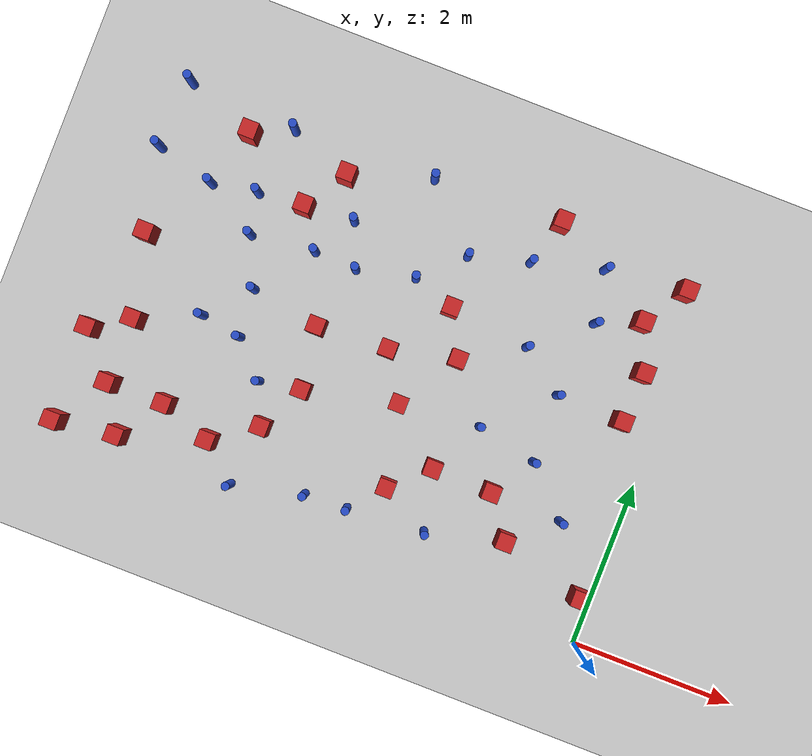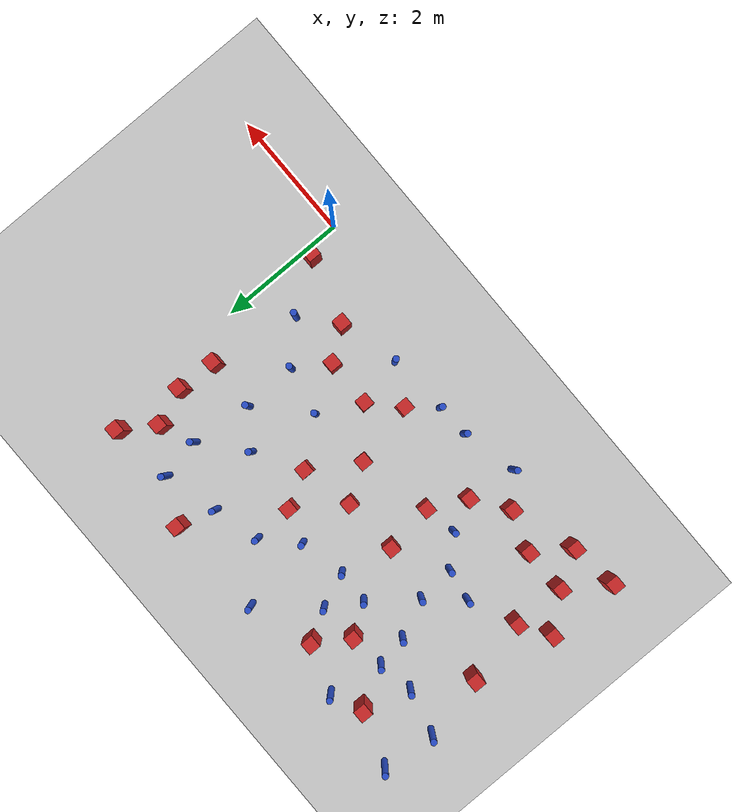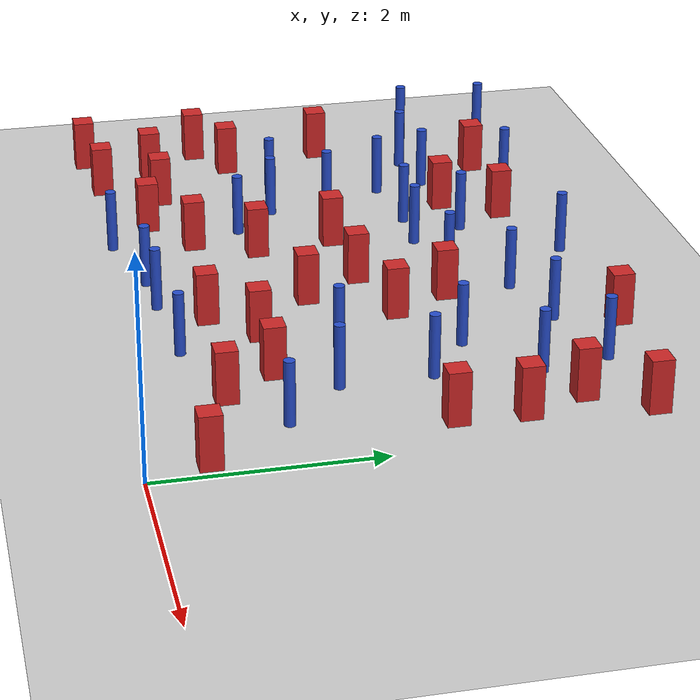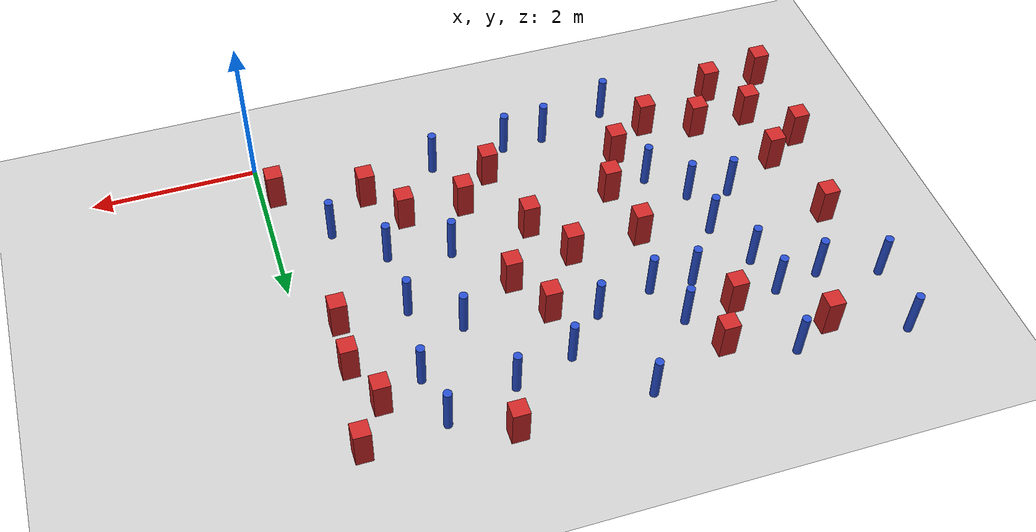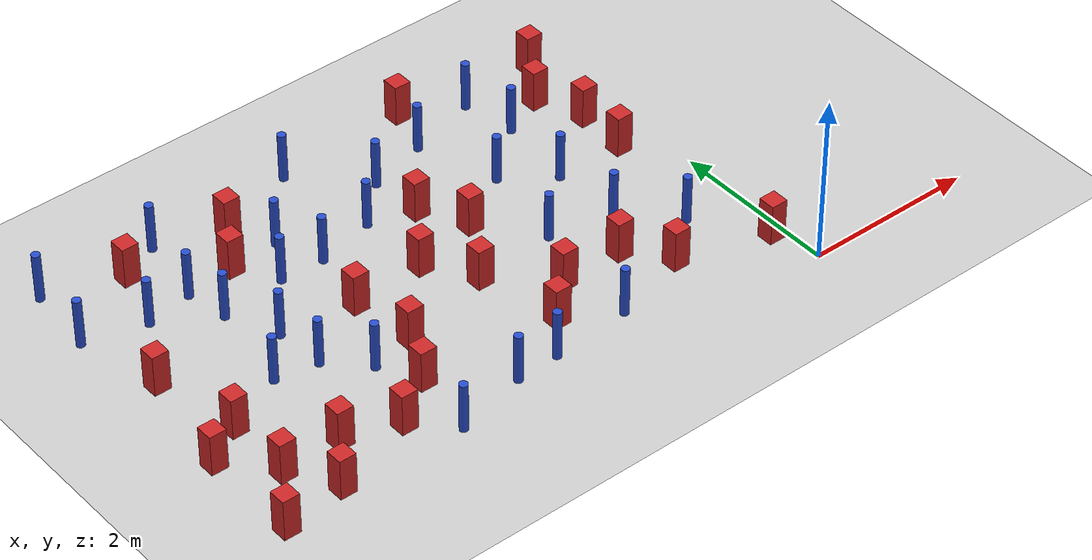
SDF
<sdf version="1.6">
 <world name="default">
  <model name="ground_plane">
   <static>1</static>
   <link name="link">
    <collision name="collision">
     <geometry><plane><normal>0 0 1</normal><size>100 100</size></plane></geometry>
     <surface><friction><ode><mu>100</mu><mu2>50</mu2></ode></friction></surface>
    </collision>
    <visual name="visual">
     <cast_shadows>0</cast_shadows>
     <geometry><plane><normal>0 0 1</normal><size>100 100</size></plane></geometry>
     <material>
      <ambient>1.0 1.0 1.0 1.0</ambient>
      <diffuse>0.8 0.8 0.8 1.0</diffuse>
      <specular>0.01 0.01 0.01 1.000000</specular>
     </material>
    </visual>
   </link>
  </model>
  <model name="square_post_obstacle0">
   <static>true</static>
   <pose>-6.19125140931 1.70404252229 8.22691968438e-08 7.2212513382e-06 -7.54495500217e-07 2.29674213826e-05</pose>
   <link name="link">
    <pose>0 0 0.25 0 -0 0</pose>
    <inertial>
     <mass>100</mass>
     <inertia>
      <ixx>0.166667</ixx>
      <ixy>0</ixy>
      <ixz>0</ixz>
      <iyy>0.166667</iyy>
      <iyz>0</iyz>
      <izz>0.166667</izz>
     </inertia>
    </inertial>
    <collision name="collision"><geometry><box><size>.2 .2 .5</size></box></geometry></collision>
    <visual name="visual">
     <geometry><box><size>.2 .2 .5</size></box></geometry>
     <material>
      <script><name>Gazebo/Red</name><uri>file://media/materials/scripts/gazebo.material</uri></script>
     </material>
    </visual>
   </link>
  </model>
  <model name="square_post_obstacle1">
   <static>true</static>
   <pose>-6.63309455178 0.268396611212 8.22691968438e-08 7.2212513382e-06 -7.54495500217e-07 2.29674213826e-05</pose>
   <link name="link">
    <pose>0 0 0.25 0 -0 0</pose>
    <inertial>
     <mass>100</mass>
     <inertia>
      <ixx>0.166667</ixx>
      <ixy>0</ixy>
      <ixz>0</ixz>
      <iyy>0.166667</iyy>
      <iyz>0</iyz>
      <izz>0.166667</izz>
     </inertia>
    </inertial>
    <collision name="collision"><geometry><box><size>.2 .2 .5</size></box></geometry></collision>
    <visual name="visual">
     <geometry><box><size>.2 .2 .5</size></box></geometry>
     <material>
      <script><name>Gazebo/Red</name><uri>file://media/materials/scripts/gazebo.material</uri></script>
     </material>
    </visual>
   </link>
  </model>
  <model name="square_post_obstacle3">
   <static>true</static>
   <pose>-4.35094908174 1.06992404259 8.22691968438e-08 7.2212513382e-06 -7.54495500217e-07 2.29674213826e-05</pose>
   <link name="link">
    <pose>0 0 0.25 0 -0 0</pose>
    <inertial>
     <mass>100</mass>
     <inertia>
      <ixx>0.166667</ixx>
      <ixy>0</ixy>
      <ixz>0</ixz>
      <iyy>0.166667</iyy>
      <iyz>0</iyz>
      <izz>0.166667</izz>
     </inertia>
    </inertial>
    <collision name="collision"><geometry><box><size>.2 .2 .5</size></box></geometry></collision>
    <visual name="visual">
     <geometry><box><size>.2 .2 .5</size></box></geometry>
     <material>
      <script><name>Gazebo/Red</name><uri>file://media/materials/scripts/gazebo.material</uri></script>
     </material>
    </visual>
   </link>
  </model>
  <model name="square_post_obstacle4">
   <static>true</static>
   <pose>-4.0653938068 1.63940919941 8.22691968438e-08 7.2212513382e-06 -7.54495500217e-07 2.29674213826e-05</pose>
   <link name="link">
    <pose>0 0 0.25 0 -0 0</pose>
    <inertial>
     <mass>100</mass>
     <inertia>
      <ixx>0.166667</ixx>
      <ixy>0</ixy>
      <ixz>0</ixz>
      <iyy>0.166667</iyy>
      <iyz>0</iyz>
      <izz>0.166667</izz>
     </inertia>
    </inertial>
    <collision name="collision"><geometry><box><size>.2 .2 .5</size></box></geometry></collision>
    <visual name="visual">
     <geometry><box><size>.2 .2 .5</size></box></geometry>
     <material>
      <script><name>Gazebo/Red</name><uri>file://media/materials/scripts/gazebo.material</uri></script>
     </material>
    </visual>
   </link>
  </model>
  <model name="square_post_obstacle11">
   <static>true</static>
   <pose>-6.2019422107 0.900519539912 8.22691968438e-08 7.2212513382e-06 -7.54495500217e-07 2.29674213826e-05</pose>
   <link name="link">
    <pose>0 0 0.25 0 -0 0</pose>
    <inertial>
     <mass>100</mass>
     <inertia>
      <ixx>0.166667</ixx>
      <ixy>0</ixy>
      <ixz>0</ixz>
      <iyy>0.166667</iyy>
      <iyz>0</iyz>
      <izz>0.166667</izz>
     </inertia>
    </inertial>
    <collision name="collision"><geometry><box><size>.2 .2 .5</size></box></geometry></collision>
    <visual name="visual">
     <geometry><box><size>.2 .2 .5</size></box></geometry>
     <material>
      <script><name>Gazebo/Red</name><uri>file://media/materials/scripts/gazebo.material</uri></script>
     </material>
    </visual>
   </link>
  </model>
  <model name="pole_obstacle10">
   <static>true</static>
   <pose>-5.93792183759 3.5129405561 2.88873142074e-08 -9.90536690245e-09 4.6021994898e-07 -1.20965994966e-07</pose>
   <link name="link">
    <pose>0 0 0.3 0 -0 0</pose>
    <inertial>
     <mass>1</mass>
     <inertia><ixx>0.145833</ixx><ixy>0</ixy><ixz>0</ixz><iyy>0.145833</iyy><iyz>0</iyz><izz>0.125</izz></inertia>
    </inertial>
    <collision name="collision">
     <geometry><cylinder><radius>0.05</radius><length>.6</length></cylinder></geometry>
    </collision>
    <visual name="visual">
     <geometry><cylinder><radius>0.05</radius><length>.6</length></cylinder></geometry>
     <material>
      <script><name>Gazebo/Blue</name><uri>file://media/materials/scripts/gazebo.material</uri></script>
     </material>
    </visual>
   </link>
  </model>
  <model name="pole_obstacle12">
   <static>true</static>
   <pose>-4.20994027742 3.70584274407 2.88873142074e-08 -9.90536690245e-09 4.6021994898e-07 -1.20965994966e-07</pose>
   <link name="link">
    <pose>0 0 0.3 0 -0 0</pose>
    <inertial>
     <mass>1</mass>
     <inertia><ixx>0.145833</ixx><ixy>0</ixy><ixz>0</ixz><iyy>0.145833</iyy><iyz>0</iyz><izz>0.125</izz></inertia>
    </inertial>
    <collision name="collision">
     <geometry><cylinder><radius>0.05</radius><length>.6</length></cylinder></geometry>
    </collision>
    <visual name="visual">
     <geometry><cylinder><radius>0.05</radius><length>.6</length></cylinder></geometry>
     <material>
      <script><name>Gazebo/Blue</name><uri>file://media/materials/scripts/gazebo.material</uri></script>
     </material>
    </visual>
   </link>
  </model>
  <model name="square_post_obstacle25">
   <static>true</static>
   <pose>-3.29495247302 2.44679450185 8.22691968438e-08 7.2212513382e-06 -7.54495500217e-07 2.29674213826e-05</pose>
   <link name="link">
    <pose>0 0 0.25 0 -0 0</pose>
    <inertial>
     <mass>100</mass>
     <inertia>
      <ixx>0.166667</ixx>
      <ixy>0</ixy>
      <ixz>0</ixz>
      <iyy>0.166667</iyy>
      <iyz>0</iyz>
      <izz>0.166667</izz>
     </inertia>
    </inertial>
    <collision name="collision"><geometry><box><size>.2 .2 .5</size></box></geometry></collision>
    <visual name="visual">
     <geometry><box><size>.2 .2 .5</size></box></geometry>
     <material>
      <script><name>Gazebo/Red</name><uri>file://media/materials/scripts/gazebo.material</uri></script>
     </material>
    </visual>
   </link>
  </model>
  <model name="square_post_obstacle27">
   <static>true</static>
   <pose>-0.446918486928 2.64767592623 8.22691968438e-08 7.2212513382e-06 -7.54495500217e-07 2.29674213826e-05</pose>
   <link name="link">
    <pose>0 0 0.25 0 -0 0</pose>
    <inertial>
     <mass>100</mass>
     <inertia>
      <ixx>0.166667</ixx>
      <ixy>0</ixy>
      <ixz>0</ixz>
      <iyy>0.166667</iyy>
      <iyz>0</iyz>
      <izz>0.166667</izz>
     </inertia>
    </inertial>
    <collision name="collision"><geometry><box><size>.2 .2 .5</size></box></geometry></collision>
    <visual name="visual">
     <geometry><box><size>.2 .2 .5</size></box></geometry>
     <material>
      <script><name>Gazebo/Red</name><uri>file://media/materials/scripts/gazebo.material</uri></script>
     </material>
    </visual>
   </link>
  </model>
  <model name="pole_obstacle19">
   <static>true</static>
   <pose>-1.96526800572 1.98989048109 2.88873142074e-08 -9.90536689684e-09 4.60219948993e-07 -1.20965994958e-07</pose>
   <link name="link">
    <pose>0 0 0.3 0 -0 0</pose>
    <inertial>
     <mass>1</mass>
     <inertia><ixx>0.145833</ixx><ixy>0</ixy><ixz>0</ixz><iyy>0.145833</iyy><iyz>0</iyz><izz>0.125</izz></inertia>
    </inertial>
    <collision name="collision">
     <geometry><cylinder><radius>0.05</radius><length>.6</length></cylinder></geometry>
    </collision>
    <visual name="visual">
     <geometry><cylinder><radius>0.05</radius><length>.6</length></cylinder></geometry>
     <material>
      <script><name>Gazebo/Blue</name><uri>file://media/materials/scripts/gazebo.material</uri></script>
     </material>
    </visual>
   </link>
  </model>
  <model name="pole_obstacle20">
   <static>true</static>
   <pose>-3.50856159253 4.51452221172 2.88873142074e-08 -9.90536692062e-09 4.60219948937e-07 -1.20965994985e-07</pose>
   <link name="link">
    <pose>0 0 0.3 0 -0 0</pose>
    <inertial>
     <mass>1</mass>
     <inertia><ixx>0.145833</ixx><ixy>0</ixy><ixz>0</ixz><iyy>0.145833</iyy><iyz>0</iyz><izz>0.125</izz></inertia>
    </inertial>
    <collision name="collision">
     <geometry><cylinder><radius>0.05</radius><length>.6</length></cylinder></geometry>
    </collision>
    <visual name="visual">
     <geometry><cylinder><radius>0.05</radius><length>.6</length></cylinder></geometry>
     <material>
      <script><name>Gazebo/Blue</name><uri>file://media/materials/scripts/gazebo.material</uri></script>
     </material>
    </visual>
   </link>
  </model>
  <model name="square_post_obstacle34">
   <static>true</static>
   <pose>-1.93465508974 4.56798095345 8.22691968438e-08 7.2212513382e-06 -7.54495500217e-07 2.29674213826e-05</pose>
   <link name="link">
    <pose>0 0 0.25 0 -0 0</pose>
    <inertial>
     <mass>100</mass>
     <inertia>
      <ixx>0.166667</ixx>
      <ixy>0</ixy>
      <ixz>0</ixz>
      <iyy>0.166667</iyy>
      <iyz>0</iyz>
      <izz>0.166667</izz>
     </inertia>
    </inertial>
    <collision name="collision"><geometry><box><size>.2 .2 .5</size></box></geometry></collision>
    <visual name="visual">
     <geometry><box><size>.2 .2 .5</size></box></geometry>
     <material>
      <script><name>Gazebo/Red</name><uri>file://media/materials/scripts/gazebo.material</uri></script>
     </material>
    </visual>
   </link>
  </model>
  <model name="pole_obstacle34">
   <static>true</static>
   <pose>-3.07428261585 0.529400504973 2.88873142074e-08 -9.90536689404e-09 4.60219949e-07 -1.20965994955e-07</pose>
   <link name="link">
    <pose>0 0 0.3 0 -0 0</pose>
    <inertial>
     <mass>1</mass>
     <inertia><ixx>0.145833</ixx><ixy>0</ixy><ixz>0</ixz><iyy>0.145833</iyy><iyz>0</iyz><izz>0.125</izz></inertia>
    </inertial>
    <collision name="collision">
     <geometry><cylinder><radius>0.05</radius><length>.6</length></cylinder></geometry>
    </collision>
    <visual name="visual">
     <geometry><cylinder><radius>0.05</radius><length>.6</length></cylinder></geometry>
     <material>
      <script><name>Gazebo/Blue</name><uri>file://media/materials/scripts/gazebo.material</uri></script>
     </material>
    </visual>
   </link>
  </model>
  <model name="pole_obstacle37">
   <static>true</static>
   <pose>-2.10249139531 4.00649818927 2.88873142074e-08 -9.90536689848e-09 4.60219948989e-07 -1.20965994961e-07</pose>
   <link name="link">
    <pose>0 0 0.3 0 -0 0</pose>
    <inertial>
     <mass>1</mass>
     <inertia><ixx>0.145833</ixx><ixy>0</ixy><ixz>0</ixz><iyy>0.145833</iyy><iyz>0</iyz><izz>0.125</izz></inertia>
    </inertial>
    <collision name="collision">
     <geometry><cylinder><radius>0.05</radius><length>.6</length></cylinder></geometry>
    </collision>
    <visual name="visual">
     <geometry><cylinder><radius>0.05</radius><length>.6</length></cylinder></geometry>
     <material>
      <script><name>Gazebo/Blue</name><uri>file://media/materials/scripts/gazebo.material</uri></script>
     </material>
    </visual>
   </link>
  </model>
  <model name="pole_obstacle41">
   <static>true</static>
   <pose>-2.81740290666 3.80692403901 2.88873142074e-08 -9.90536690232e-09 4.6021994898e-07 -1.20965994968e-07</pose>
   <link name="link">
    <pose>0 0 0.3 0 -0 0</pose>
    <inertial>
     <mass>1</mass>
     <inertia><ixx>0.145833</ixx><ixy>0</ixy><ixz>0</ixz><iyy>0.145833</iyy><iyz>0</iyz><izz>0.125</izz></inertia>
    </inertial>
    <collision name="collision">
     <geometry><cylinder><radius>0.05</radius><length>.6</length></cylinder></geometry>
    </collision>
    <visual name="visual">
     <geometry><cylinder><radius>0.05</radius><length>.6</length></cylinder></geometry>
     <material>
      <script><name>Gazebo/Blue</name><uri>file://media/materials/scripts/gazebo.material</uri></script>
     </material>
    </visual>
   </link>
  </model>
  <model name="square_post_obstacle41">
   <static>true</static>
   <pose>-4.87932527606 0.697408357818 8.22691968438e-08 7.2212513382e-06 -7.54495500217e-07 2.29674213826e-05</pose>
   <link name="link">
    <pose>0 0 0.25 0 -0 0</pose>
    <inertial>
     <mass>100</mass>
     <inertia>
      <ixx>0.166667</ixx>
      <ixy>0</ixy>
      <ixz>0</ixz>
      <iyy>0.166667</iyy>
      <iyz>0</iyz>
      <izz>0.166667</izz>
     </inertia>
    </inertial>
    <collision name="collision"><geometry><box><size>.2 .2 .5</size></box></geometry></collision>
    <visual name="visual">
     <geometry><box><size>.2 .2 .5</size></box></geometry>
     <material>
      <script><name>Gazebo/Red</name><uri>file://media/materials/scripts/gazebo.material</uri></script>
     </material>
    </visual>
   </link>
  </model>
  <model name="square_post_obstacle55">
   <static>true</static>
   <pose>-2.49396362604 2.63043787686 8.22691968438e-08 7.2212513382e-06 -7.54495500217e-07 2.29674213826e-05</pose>
   <link name="link">
    <pose>0 0 0.25 0 -0 0</pose>
    <inertial>
     <mass>100</mass>
     <inertia>
      <ixx>0.166667</ixx>
      <ixy>0</ixy>
      <ixz>0</ixz>
      <iyy>0.166667</iyy>
      <iyz>0</iyz>
      <izz>0.166667</izz>
     </inertia>
    </inertial>
    <collision name="collision"><geometry><box><size>.2 .2 .5</size></box></geometry></collision>
    <visual name="visual">
     <geometry><box><size>.2 .2 .5</size></box></geometry>
     <material>
      <script><name>Gazebo/Red</name><uri>file://media/materials/scripts/gazebo.material</uri></script>
     </material>
    </visual>
   </link>
  </model>
  <model name="pole_obstacle54">
   <static>true</static>
   <pose>-4.97482908398 1.95129842102 2.88873142074e-08 -9.90536689273e-09 4.60219949003e-07 -1.20965994953e-07</pose>
   <link name="link">
    <pose>0 0 0.3 0 -0 0</pose>
    <inertial>
     <mass>1</mass>
     <inertia><ixx>0.145833</ixx><ixy>0</ixy><ixz>0</ixz><iyy>0.145833</iyy><iyz>0</iyz><izz>0.125</izz></inertia>
    </inertial>
    <collision name="collision">
     <geometry><cylinder><radius>0.05</radius><length>.6</length></cylinder></geometry>
    </collision>
    <visual name="visual">
     <geometry><cylinder><radius>0.05</radius><length>.6</length></cylinder></geometry>
     <material>
      <script><name>Gazebo/Blue</name><uri>file://media/materials/scripts/gazebo.material</uri></script>
     </material>
    </visual>
   </link>
  </model>
  <model name="pole_obstacle55">
   <static>true</static>
   <pose>-1.14244295903 3.61015207801 2.88873142074e-08 -9.90536689791e-09 4.6021994899e-07 -1.20965994959e-07</pose>
   <link name="link">
    <pose>0 0 0.3 0 -0 0</pose>
    <inertial>
     <mass>1</mass>
     <inertia><ixx>0.145833</ixx><ixy>0</ixy><ixz>0</ixz><iyy>0.145833</iyy><iyz>0</iyz><izz>0.125</izz></inertia>
    </inertial>
    <collision name="collision">
     <geometry><cylinder><radius>0.05</radius><length>.6</length></cylinder></geometry>
    </collision>
    <visual name="visual">
     <geometry><cylinder><radius>0.05</radius><length>.6</length></cylinder></geometry>
     <material>
      <script><name>Gazebo/Blue</name><uri>file://media/materials/scripts/gazebo.material</uri></script>
     </material>
    </visual>
   </link>
  </model>
  <model name="square_post_obstacle60">
   <static>true</static>
   <pose>-2.7797643408 3.1667525672 8.22691968438e-08 7.2212513382e-06 -7.54495500217e-07 2.29674213826e-05</pose>
   <link name="link">
    <pose>0 0 0.25 0 -0 0</pose>
    <inertial>
     <mass>100</mass>
     <inertia>
      <ixx>0.166667</ixx>
      <ixy>0</ixy>
      <ixz>0</ixz>
      <iyy>0.166667</iyy>
      <iyz>0</iyz>
      <izz>0.166667</izz>
     </inertia>
    </inertial>
    <collision name="collision"><geometry><box><size>.2 .2 .5</size></box></geometry></collision>
    <visual name="visual">
     <geometry><box><size>.2 .2 .5</size></box></geometry>
     <material>
      <script><name>Gazebo/Red</name><uri>file://media/materials/scripts/gazebo.material</uri></script>
     </material>
    </visual>
   </link>
  </model>
  <model name="pole_obstacle56">
   <static>true</static>
   <pose>-6.64876103095 3.69773201304 2.88873142074e-08 -9.90536690245e-09 4.6021994898e-07 -1.20965994966e-07</pose>
   <link name="link">
    <pose>0 0 0.3 0 -0 0</pose>
    <inertial>
     <mass>1</mass>
     <inertia><ixx>0.145833</ixx><ixy>0</ixy><ixz>0</ixz><iyy>0.145833</iyy><iyz>0</iyz><izz>0.125</izz></inertia>
    </inertial>
    <collision name="collision">
     <geometry><cylinder><radius>0.05</radius><length>.6</length></cylinder></geometry>
    </collision>
    <visual name="visual">
     <geometry><cylinder><radius>0.05</radius><length>.6</length></cylinder></geometry>
     <material>
      <script><name>Gazebo/Blue</name><uri>file://media/materials/scripts/gazebo.material</uri></script>
     </material>
    </visual>
   </link>
  </model>
  <model name="square_post_obstacle71">
   <static>true</static>
   <pose>-0.167254333576 0.543579099523 8.22691968438e-08 7.22125133819e-06 -7.54495500217e-07 2.29674213826e-05</pose>
   <link name="link">
    <pose>0 0 0.25 0 -0 0</pose>
    <inertial>
     <mass>100</mass>
     <inertia>
      <ixx>0.166667</ixx>
      <ixy>0</ixy>
      <ixz>0</ixz>
      <iyy>0.166667</iyy>
      <iyz>0</iyz>
      <izz>0.166667</izz>
     </inertia>
    </inertial>
    <collision name="collision"><geometry><box><size>.2 .2 .5</size></box></geometry></collision>
    <visual name="visual">
     <geometry><box><size>.2 .2 .5</size></box></geometry>
     <material>
      <script><name>Gazebo/Red</name><uri>file://media/materials/scripts/gazebo.material</uri></script>
     </material>
    </visual>
   </link>
  </model>
  <model name="pole_obstacle68">
   <static>true</static>
   <pose>-4.45668218464 0.296480305213 2.88873142074e-08 -9.90536689883e-09 4.60219948988e-07 -1.20965994961e-07</pose>
   <link name="link">
    <pose>0 0 0.3 0 -0 0</pose>
    <inertial>
     <mass>1</mass>
     <inertia><ixx>0.145833</ixx><ixy>0</ixy><ixz>0</ixz><iyy>0.145833</iyy><iyz>0</iyz><izz>0.125</izz></inertia>
    </inertial>
    <collision name="collision">
     <geometry><cylinder><radius>0.05</radius><length>.6</length></cylinder></geometry>
    </collision>
    <visual name="visual">
     <geometry><cylinder><radius>0.05</radius><length>.6</length></cylinder></geometry>
     <material>
      <script><name>Gazebo/Blue</name><uri>file://media/materials/scripts/gazebo.material</uri></script>
     </material>
    </visual>
   </link>
  </model>
  <model name="pole_obstacle73">
   <static>true</static>
   <pose>-3.29417803908 3.34594245971 2.88873142074e-08 -9.90536690232e-09 4.6021994898e-07 -1.20965994968e-07</pose>
   <link name="link">
    <pose>0 0 0.3 0 -0 0</pose>
    <inertial>
     <mass>1</mass>
     <inertia><ixx>0.145833</ixx><ixy>0</ixy><ixz>0</ixz><iyy>0.145833</iyy><iyz>0</iyz><izz>0.125</izz></inertia>
    </inertial>
    <collision name="collision">
     <geometry><cylinder><radius>0.05</radius><length>.6</length></cylinder></geometry>
    </collision>
    <visual name="visual">
     <geometry><cylinder><radius>0.05</radius><length>.6</length></cylinder></geometry>
     <material>
      <script><name>Gazebo/Blue</name><uri>file://media/materials/scripts/gazebo.material</uri></script>
     </material>
    </visual>
   </link>
  </model>
  <model name="pole_obstacle76">
   <static>true</static>
   <pose>-5.02192679217 2.53633607673 2.88873142074e-08 -9.90536690245e-09 4.6021994898e-07 -1.20965994966e-07</pose>
   <link name="link">
    <pose>0 0 0.3 0 -0 0</pose>
    <inertial>
     <mass>1</mass>
     <inertia><ixx>0.145833</ixx><ixy>0</ixy><ixz>0</ixz><iyy>0.145833</iyy><iyz>0</iyz><izz>0.125</izz></inertia>
    </inertial>
    <collision name="collision">
     <geometry><cylinder><radius>0.05</radius><length>.6</length></cylinder></geometry>
    </collision>
    <visual name="visual">
     <geometry><cylinder><radius>0.05</radius><length>.6</length></cylinder></geometry>
     <material>
      <script><name>Gazebo/Blue</name><uri>file://media/materials/scripts/gazebo.material</uri></script>
     </material>
    </visual>
   </link>
  </model>
  <model name="square_post_obstacle77">
   <static>true</static>
   <pose>-4.16965119717 2.39448129801 8.22691968438e-08 7.2212513382e-06 -7.54495500217e-07 2.29674213826e-05</pose>
   <link name="link">
    <pose>0 0 0.25 0 -0 0</pose>
    <inertial>
     <mass>100</mass>
     <inertia>
      <ixx>0.166667</ixx>
      <ixy>0</ixy>
      <ixz>0</ixz>
      <iyy>0.166667</iyy>
      <iyz>0</iyz>
      <izz>0.166667</izz>
     </inertia>
    </inertial>
    <collision name="collision"><geometry><box><size>.2 .2 .5</size></box></geometry></collision>
    <visual name="visual">
     <geometry><box><size>.2 .2 .5</size></box></geometry>
     <material>
      <script><name>Gazebo/Red</name><uri>file://media/materials/scripts/gazebo.material</uri></script>
     </material>
    </visual>
   </link>
  </model>
  <model name="pole_obstacle80">
   <static>true</static>
   <pose>-5.24514826787 4.45206650431 2.88873142074e-08 -9.90536690842e-09 4.60219948965e-07 -1.20965994976e-07</pose>
   <link name="link">
    <pose>0 0 0.3 0 -0 0</pose>
    <inertial>
     <mass>1</mass>
     <inertia><ixx>0.145833</ixx><ixy>0</ixy><ixz>0</ixz><iyy>0.145833</iyy><iyz>0</iyz><izz>0.125</izz></inertia>
    </inertial>
    <collision name="collision">
     <geometry><cylinder><radius>0.05</radius><length>.6</length></cylinder></geometry>
    </collision>
    <visual name="visual">
     <geometry><cylinder><radius>0.05</radius><length>.6</length></cylinder></geometry>
     <material>
      <script><name>Gazebo/Blue</name><uri>file://media/materials/scripts/gazebo.material</uri></script>
     </material>
    </visual>
   </link>
  </model>
  <model name="pole_obstacle81">
   <static>true</static>
   <pose>-1.78658468235 3.06299658884 2.88873142074e-08 -9.90536689791e-09 4.6021994899e-07 -1.20965994959e-07</pose>
   <link name="link">
    <pose>0 0 0.3 0 -0 0</pose>
    <inertial>
     <mass>1</mass>
     <inertia><ixx>0.145833</ixx><ixy>0</ixy><ixz>0</ixz><iyy>0.145833</iyy><iyz>0</iyz><izz>0.125</izz></inertia>
    </inertial>
    <collision name="collision">
     <geometry><cylinder><radius>0.05</radius><length>.6</length></cylinder></geometry>
    </collision>
    <visual name="visual">
     <geometry><cylinder><radius>0.05</radius><length>.6</length></cylinder></geometry>
     <material>
      <script><name>Gazebo/Blue</name><uri>file://media/materials/scripts/gazebo.material</uri></script>
     </material>
    </visual>
   </link>
  </model>
  <model name="pole_obstacle90">
   <static>true</static>
   <pose>-5.4745451224 2.03424634794 2.88873142074e-08 -9.90536689683e-09 4.60219948993e-07 -1.20965994957e-07</pose>
   <link name="link">
    <pose>0 0 0.3 0 -0 0</pose>
    <inertial>
     <mass>1</mass>
     <inertia><ixx>0.145833</ixx><ixy>0</ixy><ixz>0</ixz><iyy>0.145833</iyy><iyz>0</iyz><izz>0.125</izz></inertia>
    </inertial>
    <collision name="collision">
     <geometry><cylinder><radius>0.05</radius><length>.6</length></cylinder></geometry>
    </collision>
    <visual name="visual">
     <geometry><cylinder><radius>0.05</radius><length>.6</length></cylinder></geometry>
     <material>
      <script><name>Gazebo/Blue</name><uri>file://media/materials/scripts/gazebo.material</uri></script>
     </material>
    </visual>
   </link>
  </model>
  <model name="pole_obstacle100">
   <static>true</static>
   <pose>-4.51058255801 3.20443330489 2.88873142074e-08 -9.90536690245e-09 4.6021994898e-07 -1.20965994966e-07</pose>
   <link name="link">
    <pose>0 0 0.3 0 -0 0</pose>
    <inertial>
     <mass>1</mass>
     <inertia><ixx>0.145833</ixx><ixy>0</ixy><ixz>0</ixz><iyy>0.145833</iyy><iyz>0</iyz><izz>0.125</izz></inertia>
    </inertial>
    <collision name="collision">
     <geometry><cylinder><radius>0.05</radius><length>.6</length></cylinder></geometry>
    </collision>
    <visual name="visual">
     <geometry><cylinder><radius>0.05</radius><length>.6</length></cylinder></geometry>
     <material>
      <script><name>Gazebo/Blue</name><uri>file://media/materials/scripts/gazebo.material</uri></script>
     </material>
    </visual>
   </link>
  </model>
  <model name="pole_obstacle103">
   <static>true</static>
   <pose>-4.57757891631 1.54824669296 2.88873142074e-08 -9.90536689445e-09 4.60219948999e-07 -1.20965994956e-07</pose>
   <link name="link">
    <pose>0 0 0.3 0 -0 0</pose>
    <inertial>
     <mass>1</mass>
     <inertia><ixx>0.145833</ixx><ixy>0</ixy><ixz>0</ixz><iyy>0.145833</iyy><iyz>0</iyz><izz>0.125</izz></inertia>
    </inertial>
    <collision name="collision">
     <geometry><cylinder><radius>0.05</radius><length>.6</length></cylinder></geometry>
    </collision>
    <visual name="visual">
     <geometry><cylinder><radius>0.05</radius><length>.6</length></cylinder></geometry>
     <material>
      <script><name>Gazebo/Blue</name><uri>file://media/materials/scripts/gazebo.material</uri></script>
     </material>
    </visual>
   </link>
  </model>
  <model name="pole_obstacle108">
   <static>true</static>
   <pose>-1.22564152234 1.83128122896 2.88873142074e-08 -9.90536689672e-09 4.60219948993e-07 -1.20965994959e-07</pose>
   <link name="link">
    <pose>0 0 0.3 0 -0 0</pose>
    <inertial>
     <mass>1</mass>
     <inertia><ixx>0.145833</ixx><ixy>0</ixy><ixz>0</ixz><iyy>0.145833</iyy><iyz>0</iyz><izz>0.125</izz></inertia>
    </inertial>
    <collision name="collision">
     <geometry><cylinder><radius>0.05</radius><length>.6</length></cylinder></geometry>
    </collision>
    <visual name="visual">
     <geometry><cylinder><radius>0.05</radius><length>.6</length></cylinder></geometry>
     <material>
      <script><name>Gazebo/Blue</name><uri>file://media/materials/scripts/gazebo.material</uri></script>
     </material>
    </visual>
   </link>
  </model>
  <model name="pole_obstacle112">
   <static>true</static>
   <pose>-3.99052406782 3.182832755 2.88873142074e-08 -9.90536692414e-09 4.60219948928e-07 -1.20965994989e-07</pose>
   <link name="link">
    <pose>0 0 0.3 0 -0 0</pose>
    <inertial>
     <mass>1</mass>
     <inertia><ixx>0.145833</ixx><ixy>0</ixy><ixz>0</ixz><iyy>0.145833</iyy><iyz>0</iyz><izz>0.125</izz></inertia>
    </inertial>
    <collision name="collision">
     <geometry><cylinder><radius>0.05</radius><length>.6</length></cylinder></geometry>
    </collision>
    <visual name="visual">
     <geometry><cylinder><radius>0.05</radius><length>.6</length></cylinder></geometry>
     <material>
      <script><name>Gazebo/Blue</name><uri>file://media/materials/scripts/gazebo.material</uri></script>
     </material>
    </visual>
   </link>
  </model>
  <model name="square_post_obstacle99">
   <static>true</static>
   <pose>-5.88717814803 0.367643921202 8.22691968438e-08 7.2212513382e-06 -7.54495500217e-07 2.29674213826e-05</pose>
   <link name="link">
    <pose>0 0 0.25 0 -0 0</pose>
    <inertial>
     <mass>100</mass>
     <inertia>
      <ixx>0.166667</ixx>
      <ixy>0</ixy>
      <ixz>0</ixz>
      <iyy>0.166667</iyy>
      <iyz>0</iyz>
      <izz>0.166667</izz>
     </inertia>
    </inertial>
    <collision name="collision"><geometry><box><size>.2 .2 .5</size></box></geometry></collision>
    <visual name="visual">
     <geometry><box><size>.2 .2 .5</size></box></geometry>
     <material>
      <script><name>Gazebo/Red</name><uri>file://media/materials/scripts/gazebo.material</uri></script>
     </material>
    </visual>
   </link>
  </model>
  <model name="pole_obstacle117">
   <static>true</static>
   <pose>-5.38297508252 3.60913502864 2.88873142074e-08 -9.90536690245e-09 4.6021994898e-07 -1.20965994966e-07</pose>
   <link name="link">
    <pose>0 0 0.3 0 -0 0</pose>
    <inertial>
     <mass>1</mass>
     <inertia><ixx>0.145833</ixx><ixy>0</ixy><ixz>0</ixz><iyy>0.145833</iyy><iyz>0</iyz><izz>0.125</izz></inertia>
    </inertial>
    <collision name="collision">
     <geometry><cylinder><radius>0.05</radius><length>.6</length></cylinder></geometry>
    </collision>
    <visual name="visual">
     <geometry><cylinder><radius>0.05</radius><length>.6</length></cylinder></geometry>
     <material>
      <script><name>Gazebo/Blue</name><uri>file://media/materials/scripts/gazebo.material</uri></script>
     </material>
    </visual>
   </link>
  </model>
  <model name="pole_obstacle122">
   <static>true</static>
   <pose>-6.57448835343 4.53604188302 2.88873142074e-08 -9.90536690842e-09 4.60219948965e-07 -1.20965994976e-07</pose>
   <link name="link">
    <pose>0 0 0.3 0 -0 0</pose>
    <inertial>
     <mass>1</mass>
     <inertia><ixx>0.145833</ixx><ixy>0</ixy><ixz>0</ixz><iyy>0.145833</iyy><iyz>0</iyz><izz>0.125</izz></inertia>
    </inertial>
    <collision name="collision">
     <geometry><cylinder><radius>0.05</radius><length>.6</length></cylinder></geometry>
    </collision>
    <visual name="visual">
     <geometry><cylinder><radius>0.05</radius><length>.6</length></cylinder></geometry>
     <material>
      <script><name>Gazebo/Blue</name><uri>file://media/materials/scripts/gazebo.material</uri></script>
     </material>
    </visual>
   </link>
  </model>
  <model name="pole_obstacle123">
   <static>true</static>
   <pose>-2.12784033954 0.599900877274 2.88873142074e-08 -9.90536689285e-09 4.60219949002e-07 -1.20965994953e-07</pose>
   <link name="link">
    <pose>0 0 0.3 0 -0 0</pose>
    <inertial>
     <mass>1</mass>
     <inertia><ixx>0.145833</ixx><ixy>0</ixy><ixz>0</ixz><iyy>0.145833</iyy><iyz>0</iyz><izz>0.125</izz></inertia>
    </inertial>
    <collision name="collision">
     <geometry><cylinder><radius>0.05</radius><length>.6</length></cylinder></geometry>
    </collision>
    <visual name="visual">
     <geometry><cylinder><radius>0.05</radius><length>.6</length></cylinder></geometry>
     <material>
      <script><name>Gazebo/Blue</name><uri>file://media/materials/scripts/gazebo.material</uri></script>
     </material>
    </visual>
   </link>
  </model>
  <model name="square_post_obstacle119">
   <static>true</static>
   <pose>-5.71100444969 4.22335061404 8.22691968438e-08 7.22125133819e-06 -7.54495500217e-07 2.29674213826e-05</pose>
   <link name="link">
    <pose>0 0 0.25 0 -0 0</pose>
    <inertial>
     <mass>100</mass>
     <inertia>
      <ixx>0.166667</ixx>
      <ixy>0</ixy>
      <ixz>0</ixz>
      <iyy>0.166667</iyy>
      <iyz>0</iyz>
      <izz>0.166667</izz>
     </inertia>
    </inertial>
    <collision name="collision"><geometry><box><size>.2 .2 .5</size></box></geometry></collision>
    <visual name="visual">
     <geometry><box><size>.2 .2 .5</size></box></geometry>
     <material>
      <script><name>Gazebo/Red</name><uri>file://media/materials/scripts/gazebo.material</uri></script>
     </material>
    </visual>
   </link>
  </model>
  <model name="square_post_obstacle127">
   <static>true</static>
   <pose>-1.21755888274 0.851216286631 8.22691968438e-08 7.2212513382e-06 -7.54495500217e-07 2.29674213826e-05</pose>
   <link name="link">
    <pose>0 0 0.25 0 -0 0</pose>
    <inertial>
     <mass>100</mass>
     <inertia>
      <ixx>0.166667</ixx>
      <ixy>0</ixy>
      <ixz>0</ixz>
      <iyy>0.166667</iyy>
      <iyz>0</iyz>
      <izz>0.166667</izz>
     </inertia>
    </inertial>
    <collision name="collision"><geometry><box><size>.2 .2 .5</size></box></geometry></collision>
    <visual name="visual">
     <geometry><box><size>.2 .2 .5</size></box></geometry>
     <material>
      <script><name>Gazebo/Red</name><uri>file://media/materials/scripts/gazebo.material</uri></script>
     </material>
    </visual>
   </link>
  </model>
  <model name="square_post_obstacle134">
   <static>true</static>
   <pose>-4.8128992337 3.65385195868 8.22691968438e-08 7.2212513382e-06 -7.54495500217e-07 2.29674213826e-05</pose>
   <link name="link">
    <pose>0 0 0.25 0 -0 0</pose>
    <inertial>
     <mass>100</mass>
     <inertia>
      <ixx>0.166667</ixx>
      <ixy>0</ixy>
      <ixz>0</ixz>
      <iyy>0.166667</iyy>
      <iyz>0</iyz>
      <izz>0.166667</izz>
     </inertia>
    </inertial>
    <collision name="collision"><geometry><box><size>.2 .2 .5</size></box></geometry></collision>
    <visual name="visual">
     <geometry><box><size>.2 .2 .5</size></box></geometry>
     <material>
      <script><name>Gazebo/Red</name><uri>file://media/materials/scripts/gazebo.material</uri></script>
     </material>
    </visual>
   </link>
  </model>
  <model name="pole_obstacle146">
   <static>true</static>
   <pose>-1.24694327063 2.66727653391 2.88873142074e-08 -9.90536689791e-09 4.6021994899e-07 -1.20965994959e-07</pose>
   <link name="link">
    <pose>0 0 0.3 0 -0 0</pose>
    <inertial>
     <mass>1</mass>
     <inertia><ixx>0.145833</ixx><ixy>0</ixy><ixz>0</ixz><iyy>0.145833</iyy><iyz>0</iyz><izz>0.125</izz></inertia>
    </inertial>
    <collision name="collision">
     <geometry><cylinder><radius>0.05</radius><length>.6</length></cylinder></geometry>
    </collision>
    <visual name="visual">
     <geometry><cylinder><radius>0.05</radius><length>.6</length></cylinder></geometry>
     <material>
      <script><name>Gazebo/Blue</name><uri>file://media/materials/scripts/gazebo.material</uri></script>
     </material>
    </visual>
   </link>
  </model>
  <model name="square_post_obstacle140">
   <static>true</static>
   <pose>-0.63766805176 3.81917064872 8.22691968438e-08 7.2212513382e-06 -7.54495500217e-07 2.29674213826e-05</pose>
   <link name="link">
    <pose>0 0 0.25 0 -0 0</pose>
    <inertial>
     <mass>100</mass>
     <inertia>
      <ixx>0.166667</ixx>
      <ixy>0</ixy>
      <ixz>0</ixz>
      <iyy>0.166667</iyy>
      <iyz>0</iyz>
      <izz>0.166667</izz>
     </inertia>
    </inertial>
    <collision name="collision"><geometry><box><size>.2 .2 .5</size></box></geometry></collision>
    <visual name="visual">
     <geometry><box><size>.2 .2 .5</size></box></geometry>
     <material>
      <script><name>Gazebo/Red</name><uri>file://media/materials/scripts/gazebo.material</uri></script>
     </material>
    </visual>
   </link>
  </model>
  <model name="pole_obstacle156">
   <static>true</static>
   <pose>-1.25870103262 4.24269810645 2.88873142074e-08 -9.90536689852e-09 4.60219948989e-07 -1.2096599496e-07</pose>
   <link name="link">
    <pose>0 0 0.3 0 -0 0</pose>
    <inertial>
     <mass>1</mass>
     <inertia><ixx>0.145833</ixx><ixy>0</ixy><ixz>0</ixz><iyy>0.145833</iyy><iyz>0</iyz><izz>0.125</izz></inertia>
    </inertial>
    <collision name="collision">
     <geometry><cylinder><radius>0.05</radius><length>.6</length></cylinder></geometry>
    </collision>
    <visual name="visual">
     <geometry><cylinder><radius>0.05</radius><length>.6</length></cylinder></geometry>
     <material>
      <script><name>Gazebo/Blue</name><uri>file://media/materials/scripts/gazebo.material</uri></script>
     </material>
    </visual>
   </link>
  </model>
  <model name="square_post_obstacle170">
   <static>true</static>
   <pose>-2.94965324862 1.89932544511 8.22691968438e-08 7.2212513382e-06 -7.54495500217e-07 2.29674213826e-05</pose>
   <link name="link">
    <pose>0 0 0.25 0 -0 0</pose>
    <inertial>
     <mass>100</mass>
     <inertia>
      <ixx>0.166667</ixx>
      <ixy>0</ixy>
      <ixz>0</ixz>
      <iyy>0.166667</iyy>
      <iyz>0</iyz>
      <izz>0.166667</izz>
     </inertia>
    </inertial>
    <collision name="collision"><geometry><box><size>.2 .2 .5</size></box></geometry></collision>
    <visual name="visual">
     <geometry><box><size>.2 .2 .5</size></box></geometry>
     <material>
      <script><name>Gazebo/Red</name><uri>file://media/materials/scripts/gazebo.material</uri></script>
     </material>
    </visual>
   </link>
  </model>
  <model name="pole_obstacle187">
   <static>true</static>
   <pose>-0.682642159844 1.29241283506 2.88873142074e-08 -9.90536689855e-09 4.60219948989e-07 -1.20965994962e-07</pose>
   <link name="link">
    <pose>0 0 0.3 0 -0 0</pose>
    <inertial>
     <mass>1</mass>
     <inertia><ixx>0.145833</ixx><ixy>0</ixy><ixz>0</ixz><iyy>0.145833</iyy><iyz>0</iyz><izz>0.125</izz></inertia>
    </inertial>
    <collision name="collision">
     <geometry><cylinder><radius>0.05</radius><length>.6</length></cylinder></geometry>
    </collision>
    <visual name="visual">
     <geometry><cylinder><radius>0.05</radius><length>.6</length></cylinder></geometry>
     <material>
      <script><name>Gazebo/Blue</name><uri>file://media/materials/scripts/gazebo.material</uri></script>
     </material>
    </visual>
   </link>
  </model>
  <model name="square_post_obstacle174">
   <static>true</static>
   <pose>-6.64521048473 1.422365987 8.22691968438e-08 7.2212513382e-06 -7.54495500217e-07 2.29674213826e-05</pose>
   <link name="link">
    <pose>0 0 0.25 0 -0 0</pose>
    <inertial>
     <mass>100</mass>
     <inertia>
      <ixx>0.166667</ixx>
      <ixy>0</ixy>
      <ixz>0</ixz>
      <iyy>0.166667</iyy>
      <iyz>0</iyz>
      <izz>0.166667</izz>
     </inertia>
    </inertial>
    <collision name="collision"><geometry><box><size>.2 .2 .5</size></box></geometry></collision>
    <visual name="visual">
     <geometry><box><size>.2 .2 .5</size></box></geometry>
     <material>
      <script><name>Gazebo/Red</name><uri>file://media/materials/scripts/gazebo.material</uri></script>
     </material>
    </visual>
   </link>
  </model>
  <model name="square_post_obstacle178">
   <static>true</static>
   <pose>-4.47878367635 4.17231275943 8.22691968438e-08 7.2212513382e-06 -7.54495500217e-07 2.29674213826e-05</pose>
   <link name="link">
    <pose>0 0 0.25 0 -0 0</pose>
    <inertial>
     <mass>100</mass>
     <inertia>
      <ixx>0.166667</ixx>
      <ixy>0</ixy>
      <ixz>0</ixz>
      <iyy>0.166667</iyy>
      <iyz>0</iyz>
      <izz>0.166667</izz>
     </inertia>
    </inertial>
    <collision name="collision"><geometry><box><size>.2 .2 .5</size></box></geometry></collision>
    <visual name="visual">
     <geometry><box><size>.2 .2 .5</size></box></geometry>
     <material>
      <script><name>Gazebo/Red</name><uri>file://media/materials/scripts/gazebo.material</uri></script>
     </material>
    </visual>
   </link>
  </model>
  <model name="square_post_obstacle181">
   <static>true</static>
   <pose>-5.50099403829 0.909530204043 8.22691968438e-08 7.2212513382e-06 -7.54495500217e-07 2.29674213826e-05</pose>
   <link name="link">
    <pose>0 0 0.25 0 -0 0</pose>
    <inertial>
     <mass>100</mass>
     <inertia>
      <ixx>0.166667</ixx>
      <ixy>0</ixy>
      <ixz>0</ixz>
      <iyy>0.166667</iyy>
      <iyz>0</iyz>
      <izz>0.166667</izz>
     </inertia>
    </inertial>
    <collision name="collision"><geometry><box><size>.2 .2 .5</size></box></geometry></collision>
    <visual name="visual">
     <geometry><box><size>.2 .2 .5</size></box></geometry>
     <material>
      <script><name>Gazebo/Red</name><uri>file://media/materials/scripts/gazebo.material</uri></script>
     </material>
    </visual>
   </link>
  </model>
  <model name="square_post_obstacle187">
   <static>true</static>
   <pose>-0.418273008849 3.26277262276 8.22691968438e-08 7.2212513382e-06 -7.54495500217e-07 2.29674213826e-05</pose>
   <link name="link">
    <pose>0 0 0.25 0 -0 0</pose>
    <inertial>
     <mass>100</mass>
     <inertia>
      <ixx>0.166667</ixx>
      <ixy>0</ixy>
      <ixz>0</ixz>
      <iyy>0.166667</iyy>
      <iyz>0</iyz>
      <izz>0.166667</izz>
     </inertia>
    </inertial>
    <collision name="collision"><geometry><box><size>.2 .2 .5</size></box></geometry></collision>
    <visual name="visual">
     <geometry><box><size>.2 .2 .5</size></box></geometry>
     <material>
      <script><name>Gazebo/Red</name><uri>file://media/materials/scripts/gazebo.material</uri></script>
     </material>
    </visual>
   </link>
  </model>
  <model name="square_post_obstacle189">
   <static>true</static>
   <pose>-2.73332279124 0.934470282962 8.22691968438e-08 7.2212513382e-06 -7.54495500217e-07 2.29674213826e-05</pose>
   <link name="link">
    <pose>0 0 0.25 0 -0 0</pose>
    <inertial>
     <mass>100</mass>
     <inertia>
      <ixx>0.166667</ixx>
      <ixy>0</ixy>
      <ixz>0</ixz>
      <iyy>0.166667</iyy>
      <iyz>0</iyz>
      <izz>0.166667</izz>
     </inertia>
    </inertial>
    <collision name="collision"><geometry><box><size>.2 .2 .5</size></box></geometry></collision>
    <visual name="visual">
     <geometry><box><size>.2 .2 .5</size></box></geometry>
     <material>
      <script><name>Gazebo/Red</name><uri>file://media/materials/scripts/gazebo.material</uri></script>
     </material>
    </visual>
   </link>
  </model>
  <model name="square_post_obstacle196">
   <static>true</static>
   <pose>-0.29700847825 4.33745732224 8.22691968438e-08 7.2212513382e-06 -7.54495500217e-07 2.29674213826e-05</pose>
   <link name="link">
    <pose>0 0 0.25 0 -0 0</pose>
    <inertial>
     <mass>100</mass>
     <inertia>
      <ixx>0.166667</ixx>
      <ixy>0</ixy>
      <ixz>0</ixz>
      <iyy>0.166667</iyy>
      <iyz>0</iyz>
      <izz>0.166667</izz>
     </inertia>
    </inertial>
    <collision name="collision"><geometry><box><size>.2 .2 .5</size></box></geometry></collision>
    <visual name="visual">
     <geometry><box><size>.2 .2 .5</size></box></geometry>
     <material>
      <script><name>Gazebo/Red</name><uri>file://media/materials/scripts/gazebo.material</uri></script>
     </material>
    </visual>
   </link>
  </model>
  <model name="pole_obstacle203">
   <static>true</static>
   <pose>-3.59563361615 0.502831722623 2.88873142074e-08 -9.90536689404e-09 4.60219949e-07 -1.20965994955e-07</pose>
   <link name="link">
    <pose>0 0 0.3 0 -0 0</pose>
    <inertial>
     <mass>1</mass>
     <inertia><ixx>0.145833</ixx><ixy>0</ixy><ixz>0</ixz><iyy>0.145833</iyy><iyz>0</iyz><izz>0.125</izz></inertia>
    </inertial>
    <collision name="collision">
     <geometry><cylinder><radius>0.05</radius><length>.6</length></cylinder></geometry>
    </collision>
    <visual name="visual">
     <geometry><cylinder><radius>0.05</radius><length>.6</length></cylinder></geometry>
     <material>
      <script><name>Gazebo/Blue</name><uri>file://media/materials/scripts/gazebo.material</uri></script>
     </material>
    </visual>
   </link>
  </model>
  <model name="pole_obstacle221">
   <static>true</static>
   <pose>-5.28893947802 3.11625856134 2.88873142074e-08 -9.90536690245e-09 4.6021994898e-07 -1.20965994966e-07</pose>
   <link name="link">
    <pose>0 0 0.3 0 -0 0</pose>
    <inertial>
     <mass>1</mass>
     <inertia><ixx>0.145833</ixx><ixy>0</ixy><ixz>0</ixz><iyy>0.145833</iyy><iyz>0</iyz><izz>0.125</izz></inertia>
    </inertial>
    <collision name="collision">
     <geometry><cylinder><radius>0.05</radius><length>.6</length></cylinder></geometry>
    </collision>
    <visual name="visual">
     <geometry><cylinder><radius>0.05</radius><length>.6</length></cylinder></geometry>
     <material>
      <script><name>Gazebo/Blue</name><uri>file://media/materials/scripts/gazebo.material</uri></script>
     </material>
    </visual>
   </link>
  </model>
  <model name="square_post_obstacle202">
   <static>true</static>
   <pose>-6.41728565513 2.69655505369 8.22691968438e-08 7.2212513382e-06 -7.54495500217e-07 2.29674213826e-05</pose>
   <link name="link">
    <pose>0 0 0.25 0 -0 0</pose>
    <inertial>
     <mass>100</mass>
     <inertia>
      <ixx>0.166667</ixx>
      <ixy>0</ixy>
      <ixz>0</ixz>
      <iyy>0.166667</iyy>
      <iyz>0</iyz>
      <izz>0.166667</izz>
     </inertia>
    </inertial>
    <collision name="collision"><geometry><box><size>.2 .2 .5</size></box></geometry></collision>
    <visual name="visual">
     <geometry><box><size>.2 .2 .5</size></box></geometry>
     <material>
      <script><name>Gazebo/Red</name><uri>file://media/materials/scripts/gazebo.material</uri></script>
     </material>
    </visual>
   </link>
  </model>
  <model name="square_post_obstacle210">
   <static>true</static>
   <pose>-1.57282172963 1.3251521237 8.22691968438e-08 7.2212513382e-06 -7.54495500217e-07 2.29674213826e-05</pose>
   <link name="link">
    <pose>0 0 0.25 0 -0 0</pose>
    <inertial>
     <mass>100</mass>
     <inertia>
      <ixx>0.166667</ixx>
      <ixy>0</ixy>
      <ixz>0</ixz>
      <iyy>0.166667</iyy>
      <iyz>0</iyz>
      <izz>0.166667</izz>
     </inertia>
    </inertial>
    <collision name="collision"><geometry><box><size>.2 .2 .5</size></box></geometry></collision>
    <visual name="visual">
     <geometry><box><size>.2 .2 .5</size></box></geometry>
     <material>
      <script><name>Gazebo/Red</name><uri>file://media/materials/scripts/gazebo.material</uri></script>
     </material>
    </visual>
   </link>
  </model>
  <model name="square_post_obstacle217">
   <static>true</static>
   <pose>-2.30595803627 1.33702169066 8.22691968438e-08 7.2212513382e-06 -7.54495500217e-07 2.29674213826e-05</pose>
   <link name="link">
    <pose>0 0 0.25 0 -0 0</pose>
    <inertial>
     <mass>100</mass>
     <inertia>
      <ixx>0.166667</ixx>
      <ixy>0</ixy>
      <ixz>0</ixz>
      <iyy>0.166667</iyy>
      <iyz>0</iyz>
      <izz>0.166667</izz>
     </inertia>
    </inertial>
    <collision name="collision"><geometry><box><size>.2 .2 .5</size></box></geometry></collision>
    <visual name="visual">
     <geometry><box><size>.2 .2 .5</size></box></geometry>
     <material>
      <script><name>Gazebo/Red</name><uri>file://media/materials/scripts/gazebo.material</uri></script>
     </material>
    </visual>
   </link>
  </model>
 </world>
</sdf>
